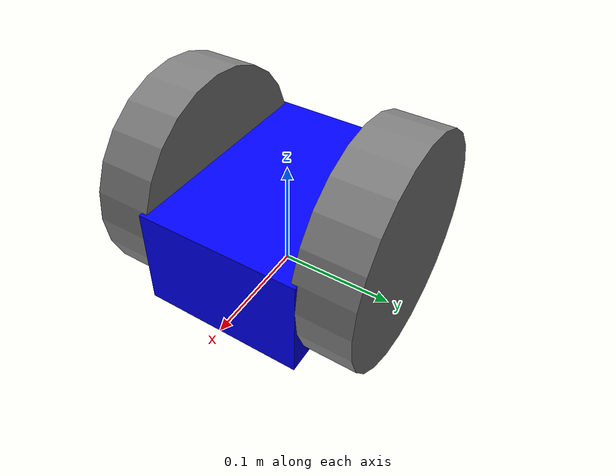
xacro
<?xml version='1.0'?>
<robot xmlns:xacro="http://ros.org/wiki/xacro" name="my_robots_super_model">

  <xacro:include filename="$(find ros_project)/urdf/materials.xacro" />

  <xacro:property name="base_length" value="0.200" />
  <xacro:property name="base_width" value="0.140" />
  <xacro:property name="base_height" value="0.090" />

  <link name="world"/>

  <joint name="world_joint" type="fixed">
    <parent link="world"/>
    <child link="base_link"/>
    <origin xyz="0 0 0" rpy="0 0 0"/>
  </joint>

  <link name="base_link">
    <visual>
      <origin xyz="0 0 0.045" rpy="0 0 0"/>
      <geometry>
        <box size="${base_length} ${base_width} ${base_height}"/>
      </geometry>
      <material name="Blue"/>
    </visual>
    <collision>
      <origin xyz="0 0 0.045" rpy="0 0 0"/>
      <geometry>
        <box size="${base_length} ${base_width} ${base_height}"/>
      </geometry>
    </collision>
    <inertial>
      <mass value="5.0"/>
      <origin xyz="0 0 0.045"/>
      <inertia ixx="0.1" ixy="0" ixz="0" iyy="0.1" iyz="0" izz="0.1"/>
    </inertial>
  </link>

  <xacro:include filename="$(find ros_project)/urdf/wheel.xacro" />

  <xacro:wheel side="left" parent="base_link" x="0" y="0.09" z="0.04" />

  <xacro:wheel side="right" parent="base_link" x="0" y="-0.09" z="0.04" />

</robot>

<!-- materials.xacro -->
<robot xmlns:xacro="http://ros.org/wiki/xacro">
  <material name="Gray">
    <color rgba="0.5 0.5 0.5 1.0"/>
  </material>
  <material name="Blue">
    <color rgba="0.0 0.0 1.0 1.0"/>
  </material>
  <material name="Red">
    <color rgba="1.0 0.0 0.0 1.0"/>
  </material>
  <material name="Green">
    <color rgba="0.0 1.0 0.0 1.0"/>
  </material>
  <material name="Yellow">
    <color rgba="1.0 1.0 0.0 1.0"/>
  </material>
  <material name="Orange">
    <color rgba="1.0 0.5 0.0 1.0"/>
  </material>
  <material name="Purple">
    <color rgba="0.5 0.0 0.5 1.0"/>
  </material>
</robot>

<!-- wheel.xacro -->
<robot xmlns:xacro="http://ros.org/wiki/xacro">
  <xacro:macro name="wheel" params="side parent x y z">
    <link name="wheel_${side}">
      <visual>
        <origin xyz="0 0 0.025" rpy="0 1.57 1.57"/>
        <geometry>
          <cylinder length="0.05" radius="0.10"/>
        </geometry>
        <material name="Gray"/>
      </visual>
      <collision>
        <origin xyz="0 0 0.025" rpy="0 1.57 1.57"/>
        <geometry>
          <cylinder length="0.05" radius="0.10"/>
        </geometry>
      </collision>
      <inertial>
        <mass value="1.0"/>
        <origin xyz="0 0 0.025"/>
        <inertia ixx="0.01" ixy="0" ixz="0" iyy="0.01" iyz="0" izz="0.01"/>
      </inertial>
    </link>
    <joint name="wheel_${side}_joint" type="continuous">
      <parent link="${parent}"/>
      <child link="wheel_${side}"/>
      <origin xyz="${x} ${y} ${z}" rpy="0 0 0"/>
      <axis xyz="0 0 1"/>
    </joint>

    <transmission type="transmission_interface/SimpleTransmission" name="wheel_${side}_trans">
      <actuator name="wheel_${side}_motor">
        <hardwareInterface>hardware_interface/VelocityJointInterface</hardwareInterface>
      </actuator>
      <joint name="wheel_${side}_joint">
        <hardwareInterface>hardware_interface/VelocityJointInterface</hardwareInterface>
      </joint>
    </transmission>
  </xacro:macro>
</robot>
